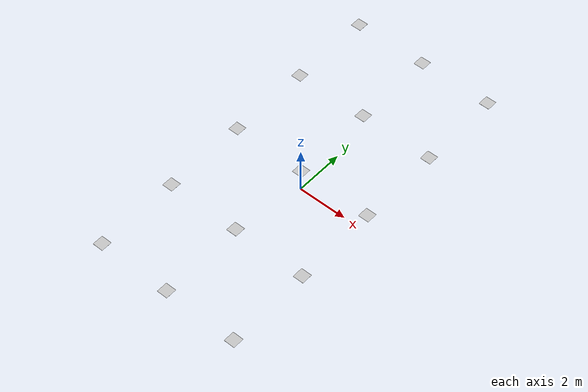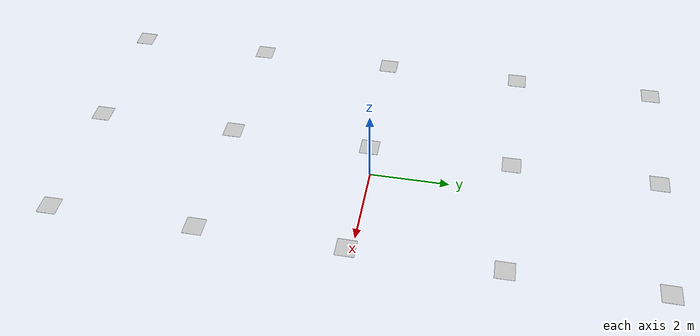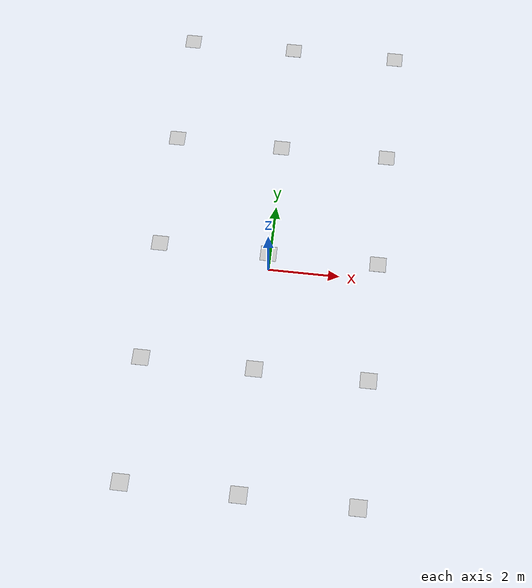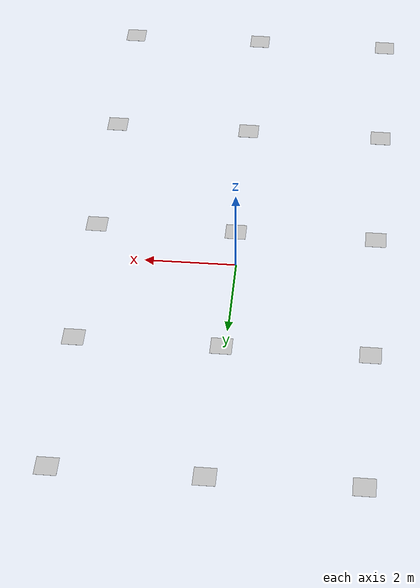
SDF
<?xml version="1.0"?>
<sdf version="1.5">
    <model name="aruco_2_99">
        <static>true</static>
        <link name="aruco_2_99_link">

<visual name="visual_marker_2_0">
    <pose>-3.0 -6.8 1.0 0.0 0.0 1.57079632679</pose>
    <cast_shadows>false</cast_shadows>
    <geometry>
        <box>
            <size>0.44 0.44 1e-3</size>
        </box>
    </geometry>
    <material>
        <script>
            <uri>model://aruco_cmit_txt/materials/scripts</uri>
            <uri>model://aruco_cmit_txt/materials/textures</uri>
            <name>aruco/marker_2_0</name>
        </script>
    </material>
</visual>

<visual name="visual_marker_2_1">
    <pose>0.0 -6.8 1.0 0.0 0.0 1.57079632679</pose>
    <cast_shadows>false</cast_shadows>
    <geometry>
        <box>
            <size>0.44 0.44 1e-3</size>
        </box>
    </geometry>
    <material>
        <script>
            <uri>model://aruco_cmit_txt/materials/scripts</uri>
            <uri>model://aruco_cmit_txt/materials/textures</uri>
            <name>aruco/marker_2_1</name>
        </script>
    </material>
</visual>

<visual name="visual_marker_2_2">
    <pose>3.0 -6.8 1.0 0.0 0.0 1.57079632679</pose>
    <cast_shadows>false</cast_shadows>
    <geometry>
        <box>
            <size>0.44 0.44 1e-3</size>
        </box>
    </geometry>
    <material>
        <script>
            <uri>model://aruco_cmit_txt/materials/scripts</uri>
            <uri>model://aruco_cmit_txt/materials/textures</uri>
            <name>aruco/marker_2_2</name>
        </script>
    </material>
</visual>

<visual name="visual_marker_2_3">
    <pose>-3.0 -3.4 1.0 0.0 0.0 1.57079632679</pose>
    <cast_shadows>false</cast_shadows>
    <geometry>
        <box>
            <size>0.44 0.44 1e-3</size>
        </box>
    </geometry>
    <material>
        <script>
            <uri>model://aruco_cmit_txt/materials/scripts</uri>
            <uri>model://aruco_cmit_txt/materials/textures</uri>
            <name>aruco/marker_2_3</name>
        </script>
    </material>
</visual>

<visual name="visual_marker_2_4">
    <pose>0.0 -3.4 1.0 0.0 0.0 1.57079632679</pose>
    <cast_shadows>false</cast_shadows>
    <geometry>
        <box>
            <size>0.44 0.44 1e-3</size>
        </box>
    </geometry>
    <material>
        <script>
            <uri>model://aruco_cmit_txt/materials/scripts</uri>
            <uri>model://aruco_cmit_txt/materials/textures</uri>
            <name>aruco/marker_2_4</name>
        </script>
    </material>
</visual>

<visual name="visual_marker_2_5">
    <pose>3.0 -3.4 1.0 0.0 0.0 1.57079632679</pose>
    <cast_shadows>false</cast_shadows>
    <geometry>
        <box>
            <size>0.44 0.44 1e-3</size>
        </box>
    </geometry>
    <material>
        <script>
            <uri>model://aruco_cmit_txt/materials/scripts</uri>
            <uri>model://aruco_cmit_txt/materials/textures</uri>
            <name>aruco/marker_2_5</name>
        </script>
    </material>
</visual>

<visual name="visual_marker_2_6">
    <pose>-3.0 0.0 1.0 0.0 0.0 1.57079632679</pose>
    <cast_shadows>false</cast_shadows>
    <geometry>
        <box>
            <size>0.44 0.44 1e-3</size>
        </box>
    </geometry>
    <material>
        <script>
            <uri>model://aruco_cmit_txt/materials/scripts</uri>
            <uri>model://aruco_cmit_txt/materials/textures</uri>
            <name>aruco/marker_2_6</name>
        </script>
    </material>
</visual>

<visual name="visual_marker_2_7">
    <pose>0.0 0.0 1.0 0.0 0.0 1.57079632679</pose>
    <cast_shadows>false</cast_shadows>
    <geometry>
        <box>
            <size>0.44 0.44 1e-3</size>
        </box>
    </geometry>
    <material>
        <script>
            <uri>model://aruco_cmit_txt/materials/scripts</uri>
            <uri>model://aruco_cmit_txt/materials/textures</uri>
            <name>aruco/marker_2_7</name>
        </script>
    </material>
</visual>

<visual name="visual_marker_2_8">
    <pose>3.0 0.0 1.0 0.0 0.0 1.57079632679</pose>
    <cast_shadows>false</cast_shadows>
    <geometry>
        <box>
            <size>0.44 0.44 1e-3</size>
        </box>
    </geometry>
    <material>
        <script>
            <uri>model://aruco_cmit_txt/materials/scripts</uri>
            <uri>model://aruco_cmit_txt/materials/textures</uri>
            <name>aruco/marker_2_8</name>
        </script>
    </material>
</visual>

<visual name="visual_marker_2_9">
    <pose>-3.0 3.4 1.0 0.0 0.0 1.57079632679</pose>
    <cast_shadows>false</cast_shadows>
    <geometry>
        <box>
            <size>0.44 0.44 1e-3</size>
        </box>
    </geometry>
    <material>
        <script>
            <uri>model://aruco_cmit_txt/materials/scripts</uri>
            <uri>model://aruco_cmit_txt/materials/textures</uri>
            <name>aruco/marker_2_9</name>
        </script>
    </material>
</visual>

<visual name="visual_marker_2_10">
    <pose>0.0 3.4 1.0 0.0 0.0 1.57079632679</pose>
    <cast_shadows>false</cast_shadows>
    <geometry>
        <box>
            <size>0.44 0.44 1e-3</size>
        </box>
    </geometry>
    <material>
        <script>
            <uri>model://aruco_cmit_txt/materials/scripts</uri>
            <uri>model://aruco_cmit_txt/materials/textures</uri>
            <name>aruco/marker_2_10</name>
        </script>
    </material>
</visual>

<visual name="visual_marker_2_11">
    <pose>3.0 3.4 1.0 0.0 0.0 1.57079632679</pose>
    <cast_shadows>false</cast_shadows>
    <geometry>
        <box>
            <size>0.44 0.44 1e-3</size>
        </box>
    </geometry>
    <material>
        <script>
            <uri>model://aruco_cmit_txt/materials/scripts</uri>
            <uri>model://aruco_cmit_txt/materials/textures</uri>
            <name>aruco/marker_2_11</name>
        </script>
    </material>
</visual>

<visual name="visual_marker_2_12">
    <pose>-3.0 6.8 1.0 0.0 0.0 1.57079632679</pose>
    <cast_shadows>false</cast_shadows>
    <geometry>
        <box>
            <size>0.44 0.44 1e-3</size>
        </box>
    </geometry>
    <material>
        <script>
            <uri>model://aruco_cmit_txt/materials/scripts</uri>
            <uri>model://aruco_cmit_txt/materials/textures</uri>
            <name>aruco/marker_2_12</name>
        </script>
    </material>
</visual>

<visual name="visual_marker_2_13">
    <pose>0.0 6.8 1.0 0.0 0.0 1.57079632679</pose>
    <cast_shadows>false</cast_shadows>
    <geometry>
        <box>
            <size>0.44 0.44 1e-3</size>
        </box>
    </geometry>
    <material>
        <script>
            <uri>model://aruco_cmit_txt/materials/scripts</uri>
            <uri>model://aruco_cmit_txt/materials/textures</uri>
            <name>aruco/marker_2_13</name>
        </script>
    </material>
</visual>

<visual name="visual_marker_2_14">
    <pose>3.0 6.8 1.0 0.0 0.0 1.57079632679</pose>
    <cast_shadows>false</cast_shadows>
    <geometry>
        <box>
            <size>0.44 0.44 1e-3</size>
        </box>
    </geometry>
    <material>
        <script>
            <uri>model://aruco_cmit_txt/materials/scripts</uri>
            <uri>model://aruco_cmit_txt/materials/textures</uri>
            <name>aruco/marker_2_14</name>
        </script>
    </material>
</visual>
        </link>
    </model>
</sdf>
